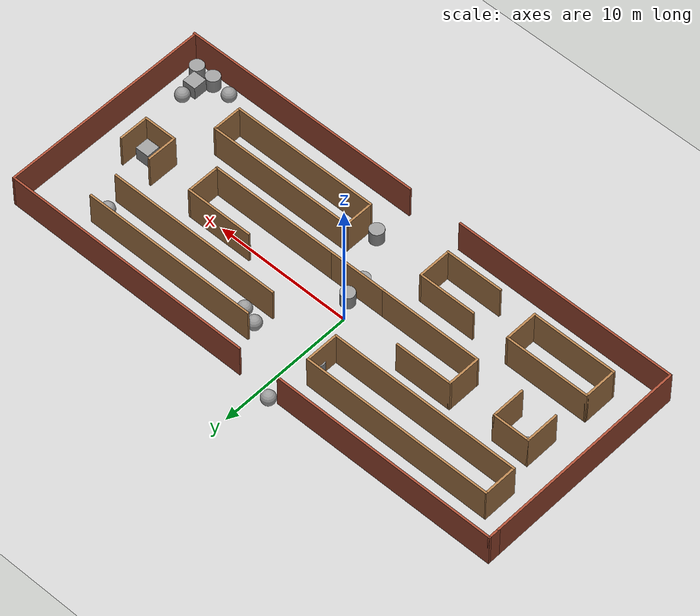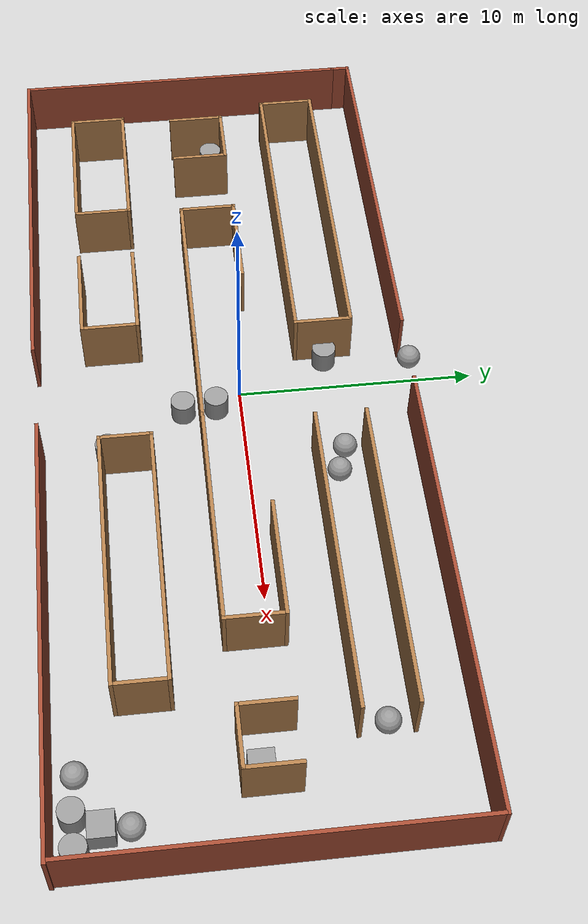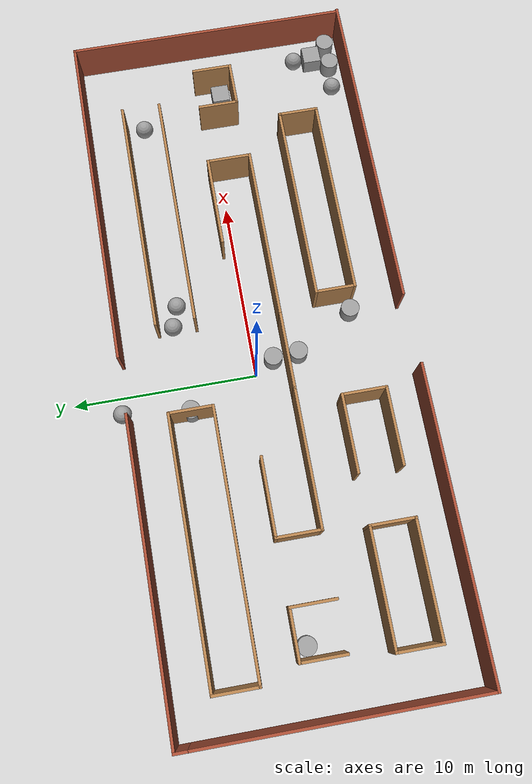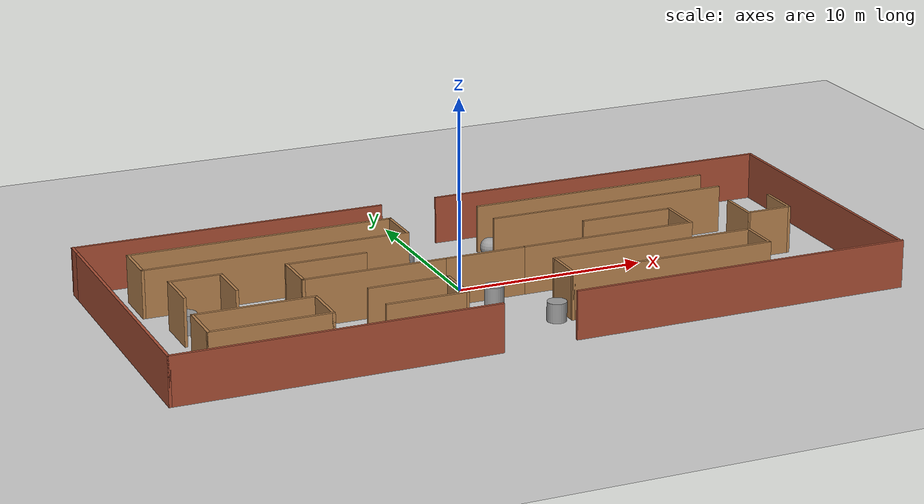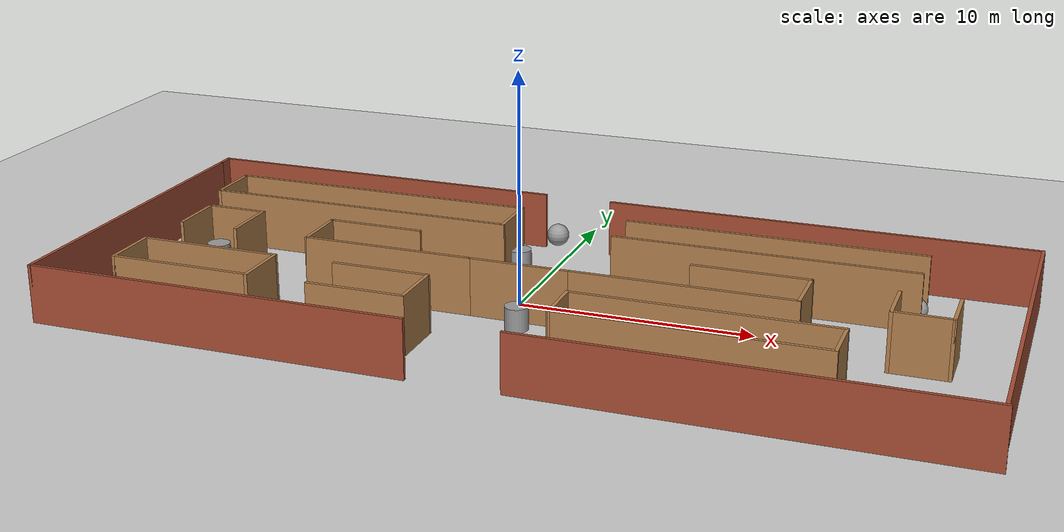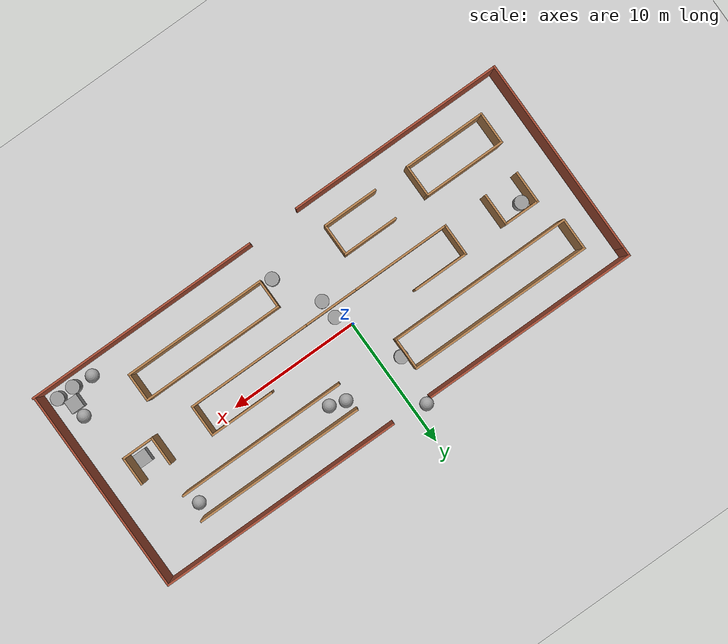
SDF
<sdf version="1.7">
 <world name="default">
  <light name="sun" type="directional">
   <pose>0 0 10 0 -0 0</pose>
   <diffuse>0.8 0.8 0.8 1</diffuse>
   <specular>0.2 0.2 0.2 1</specular>
   <attenuation>
    <range>1000</range>
    <constant>0.9</constant>
    <linear>0.01</linear>
    <quadratic>0.001</quadratic>
   </attenuation>
   <direction>-0.5 0.1 -0.9</direction>
   <spot><inner_angle>0</inner_angle><outer_angle>0</outer_angle><falloff>0</falloff></spot>
  </light>
  <model name="ground_plane">
   <static>1</static>
   <link name="link">
    <collision name="collision">
     <geometry><plane><normal>0 0 1</normal><size>100 100</size></plane></geometry>
     <surface>
      <contact><collide_bitmask>65535</collide_bitmask></contact>
      <friction><ode><mu>100</mu><mu2>50</mu2></ode></friction>
     </surface>
    </collision>
    <visual name="visual">
     <cast_shadows>0</cast_shadows>
     <geometry><plane><normal>0 0 1</normal><size>100 100</size></plane></geometry>
     <material>
      <script><uri>file://media/materials/scripts/gazebo.material</uri><name>Gazebo/Grey</name></script>
     </material>
    </visual>
   </link>
  </model>
  <gravity>0 0 -9.8</gravity>
  <magnetic_field>6e-06 2.3e-05 -4.2e-05</magnetic_field>
  <atmosphere type="adiabatic"/>
  <physics type="ode">
   <max_step_size>0.001</max_step_size>
   <real_time_factor>1</real_time_factor>
   <real_time_update_rate>1000</real_time_update_rate>
  </physics>
  <scene><ambient>0.4 0.4 0.4 1</ambient><background>0.7 0.7 0.7 1</background><shadows>1</shadows></scene>
  <spherical_coordinates>
   <surface_model>EARTH_WGS84</surface_model>
   <latitude_deg>0</latitude_deg>
   <longitude_deg>0</longitude_deg>
   <elevation>0</elevation>
   <heading_deg>0</heading_deg>
  </spherical_coordinates>
  <model name="my_world_2">
   <pose>1.30794 -0.7323 0 0 -0 0</pose>
   <link name="Wall_10">
    <collision name="Wall_10_Collision">
     <geometry><box><size>16.5 0.15 2.5</size></box></geometry>
     <pose>0 0 1.25 0 -0 0</pose>
    </collision>
    <visual name="Wall_10_Visual">
     <pose>0 0 1.25 0 -0 0</pose>
     <geometry><box><size>16.5 0.15 2.5</size></box></geometry>
     <material>
      <script><uri>file://media/materials/scripts/gazebo.material</uri><name>Gazebo/Bricks</name></script>
      <ambient>1 1 1 1</ambient>
     </material>
     <meta><layer>0</layer></meta>
    </visual>
    <pose>-10.9155 7.8 0 0 -0 0</pose>
   </link>
   <link name="Wall_12">
    <collision name="Wall_12_Collision">
     <geometry><box><size>18.75 0.15 2.5</size></box></geometry>
     <pose>0 0 1.25 0 -0 0</pose>
    </collision>
    <visual name="Wall_12_Visual">
     <pose>0 0 1.25 0 -0 0</pose>
     <geometry><box><size>18.75 0.15 2.5</size></box></geometry>
     <material>
      <script><uri>file://media/materials/scripts/gazebo.material</uri><name>Gazebo/Bricks</name></script>
      <ambient>1 1 1 1</ambient>
     </material>
     <meta><layer>0</layer></meta>
    </visual>
    <pose>9.70952 7.8 0 0 -0 3.14159</pose>
   </link>
   <link name="Wall_14">
    <collision name="Wall_14_Collision">
     <geometry><box><size>14 0.15 2.5</size></box></geometry>
     <pose>0 0 1.25 0 -0 0</pose>
    </collision>
    <visual name="Wall_14_Visual">
     <pose>0 0 1.25 0 -0 0</pose>
     <geometry><box><size>14 0.15 2.5</size></box></geometry>
     <material>
      <script><uri>file://media/materials/scripts/gazebo.material</uri><name>Gazebo/Wood</name></script>
      <ambient>1 1 1 1</ambient>
     </material>
     <meta><layer>0</layer></meta>
    </visual>
    <pose>-9.97885 5.65428 0 0 -0 0</pose>
   </link>
   <link name="Wall_15">
    <collision name="Wall_15_Collision">
     <geometry><box><size>2.5 0.15 2.5</size></box></geometry>
     <pose>0 0 1.25 0 -0 0</pose>
    </collision>
    <visual name="Wall_15_Visual">
     <pose>0 0 1.25 0 -0 0</pose>
     <geometry><box><size>2.5 0.15 2.5</size></box></geometry>
     <material>
      <script><uri>file://media/materials/scripts/gazebo.material</uri><name>Gazebo/Wood</name></script>
      <ambient>1 1 1 1</ambient>
     </material>
     <meta><layer>0</layer></meta>
    </visual>
    <pose>-3.05385 4.47928 0 0 -0 -1.5708</pose>
   </link>
   <link name="Wall_16">
    <collision name="Wall_16_Collision">
     <geometry><box><size>14 0.15 2.5</size></box></geometry>
     <pose>0 0 1.25 0 -0 0</pose>
    </collision>
    <visual name="Wall_16_Visual">
     <pose>0 0 1.25 0 -0 0</pose>
     <geometry><box><size>14 0.15 2.5</size></box></geometry>
     <material>
      <script><uri>file://media/materials/scripts/gazebo.material</uri><name>Gazebo/Wood</name></script>
      <ambient>1 1 1 1</ambient>
     </material>
     <meta><layer>0</layer></meta>
    </visual>
    <pose>-9.97885 3.30428 0 0 -0 3.14159</pose>
   </link>
   <link name="Wall_17">
    <collision name="Wall_17_Collision">
     <geometry><box><size>2.5 0.15 2.5</size></box></geometry>
     <pose>0 0 1.25 0 -0 0</pose>
    </collision>
    <visual name="Wall_17_Visual">
     <pose>0 0 1.25 0 -0 0</pose>
     <geometry><box><size>2.5 0.15 2.5</size></box></geometry>
     <material>
      <script><uri>file://media/materials/scripts/gazebo.material</uri><name>Gazebo/Wood</name></script>
      <ambient>1 1 1 1</ambient>
     </material>
     <meta><layer>0</layer></meta>
    </visual>
    <pose>-16.9039 4.47928 0 0 -0 1.5708</pose>
   </link>
   <link name="Wall_23">
    <collision name="Wall_23_Collision">
     <geometry><box><size>2.5 0.15 2.5</size></box></geometry>
     <pose>0 0 1.25 0 -0 0</pose>
    </collision>
    <visual name="Wall_23_Visual">
     <pose>0 0 1.25 0 -0 0</pose>
     <geometry><box><size>2.5 0.15 2.5</size></box></geometry>
     <material>
      <script><uri>file://media/materials/scripts/gazebo.material</uri><name>Gazebo/Wood</name></script>
      <ambient>1 1 1 1</ambient>
     </material>
     <meta><layer>0</layer></meta>
    </visual>
    <pose>-10.2044 0.152559 0 0 -0 1.5708</pose>
   </link>
   <link name="Wall_36">
    <collision name="Wall_36_Collision">
     <geometry><box><size>13 0.15 2.5</size></box></geometry>
     <pose>0 0 1.25 0 -0 0</pose>
    </collision>
    <visual name="Wall_36_Visual">
     <pose>0 0 1.25 0 -0 0</pose>
     <geometry><box><size>13 0.15 2.5</size></box></geometry>
     <material>
      <script><uri>file://media/materials/scripts/gazebo.material</uri><name>Gazebo/Wood</name></script>
      <ambient>1 1 1 1</ambient>
     </material>
     <meta><layer>0</layer></meta>
    </visual>
    <pose>8.27029 3.50776 0 0 -0 0</pose>
   </link>
   <link name="Wall_38">
    <collision name="Wall_38_Collision">
     <geometry><box><size>13 0.15 2.5</size></box></geometry>
     <pose>0 0 1.25 0 -0 0</pose>
    </collision>
    <visual name="Wall_38_Visual">
     <pose>0 0 1.25 0 -0 0</pose>
     <geometry><box><size>13 0.15 2.5</size></box></geometry>
     <material>
      <script><uri>file://media/materials/scripts/gazebo.material</uri><name>Gazebo/Wood</name></script>
      <ambient>1 1 1 1</ambient>
     </material>
     <meta><layer>0</layer></meta>
    </visual>
    <pose>8.27029 5.60776 0 0 -0 3.14159</pose>
   </link>
   <link name="Wall_4">
    <collision name="Wall_4_Collision">
     <geometry><box><size>15 0.15 2.5</size></box></geometry>
     <pose>0 0 1.25 0 -0 0</pose>
    </collision>
    <visual name="Wall_4_Visual">
     <pose>0 0 1.25 0 -0 0</pose>
     <geometry><box><size>15 0.15 2.5</size></box></geometry>
     <material>
      <script><uri>file://media/materials/scripts/gazebo.material</uri><name>Gazebo/Bricks</name></script>
      <ambient>1 1 1 1</ambient>
     </material>
     <meta><layer>0</layer></meta>
    </visual>
    <pose>-19.0905 -0.375 0 0 -0 -1.5708</pose>
   </link>
   <link name="Wall_41">
    <collision name="Wall_41_Collision">
     <geometry><box><size>2.5 0.15 2.5</size></box></geometry>
     <pose>0 0 1.25 0 -0 0</pose>
    </collision>
    <visual name="Wall_41_Visual">
     <pose>0 0 1.25 0 -0 0</pose>
     <geometry><box><size>2.5 0.15 2.5</size></box></geometry>
     <material>
      <script><uri>file://media/materials/scripts/gazebo.material</uri><name>Gazebo/Wood</name></script>
      <ambient>1 1 1 1</ambient>
     </material>
     <meta><layer>0</layer></meta>
    </visual>
    <pose>10.7188 0.152559 0 0 -0 1.5708</pose>
   </link>
   <link name="Wall_43">
    <collision name="Wall_43_Collision">
     <geometry><box><size>7.5 0.15 2.5</size></box></geometry>
     <pose>0 0 1.25 0 -0 0</pose>
    </collision>
    <visual name="Wall_43_Visual">
     <pose>0 0 1.25 0 -0 0</pose>
     <geometry><box><size>7.5 0.15 2.5</size></box></geometry>
     <material>
      <script><uri>file://media/materials/scripts/gazebo.material</uri><name>Gazebo/Wood</name></script>
      <ambient>1 1 1 1</ambient>
     </material>
     <meta><layer>0</layer></meta>
    </visual>
    <pose>-6.52941 -1.02244 0 0 -0 0</pose>
   </link>
   <link name="Wall_45">
    <collision name="Wall_45_Collision">
     <geometry><box><size>9.5 0.15 2.5</size></box></geometry>
     <pose>0 0 1.25 0 -0 0</pose>
    </collision>
    <visual name="Wall_45_Visual">
     <pose>0 0 1.25 0 -0 0</pose>
     <geometry><box><size>9.5 0.15 2.5</size></box></geometry>
     <material>
      <script><uri>file://media/materials/scripts/gazebo.material</uri><name>Gazebo/Wood</name></script>
      <ambient>1 1 1 1</ambient>
     </material>
     <meta><layer>0</layer></meta>
    </visual>
    <pose>6.04381 -1.02244 0 0 -0 3.14159</pose>
   </link>
   <link name="Wall_48">
    <collision name="Wall_48_Collision">
     <geometry><box><size>6.25 0.15 2.5</size></box></geometry>
     <pose>0 0 1.25 0 -0 0</pose>
    </collision>
    <visual name="Wall_48_Visual">
     <pose>0 0 1.25 0 -0 0</pose>
     <geometry><box><size>6.25 0.15 2.5</size></box></geometry>
     <material>
      <script><uri>file://media/materials/scripts/gazebo.material</uri><name>Gazebo/Wood</name></script>
      <ambient>1 1 1 1</ambient>
     </material>
     <meta><layer>0</layer></meta>
    </visual>
    <pose>-13.4817 -5.73874 0 0 -0 0</pose>
   </link>
   <link name="Wall_49">
    <collision name="Wall_49_Collision">
     <geometry><box><size>2.5 0.15 2.5</size></box></geometry>
     <pose>0 0 1.25 0 -0 0</pose>
    </collision>
    <visual name="Wall_49_Visual">
     <pose>0 0 1.25 0 -0 0</pose>
     <geometry><box><size>2.5 0.15 2.5</size></box></geometry>
     <material>
      <script><uri>file://media/materials/scripts/gazebo.material</uri><name>Gazebo/Wood</name></script>
      <ambient>1 1 1 1</ambient>
     </material>
     <meta><layer>0</layer></meta>
    </visual>
    <pose>-10.4317 -4.56374 0 0 -0 1.5708</pose>
   </link>
   <link name="Wall_50">
    <collision name="Wall_50_Collision">
     <geometry><box><size>6.25 0.15 2.5</size></box></geometry>
     <pose>0 0 1.25 0 -0 0</pose>
    </collision>
    <visual name="Wall_50_Visual">
     <pose>0 0 1.25 0 -0 0</pose>
     <geometry><box><size>6.25 0.15 2.5</size></box></geometry>
     <material>
      <script><uri>file://media/materials/scripts/gazebo.material</uri><name>Gazebo/Wood</name></script>
      <ambient>1 1 1 1</ambient>
     </material>
     <meta><layer>0</layer></meta>
    </visual>
    <pose>-13.4817 -3.38874 0 0 -0 3.14159</pose>
   </link>
   <link name="Wall_52">
    <collision name="Wall_52_Collision">
     <geometry><box><size>2.5 0.15 2.5</size></box></geometry>
     <pose>0 0 1.25 0 -0 0</pose>
    </collision>
    <visual name="Wall_52_Visual">
     <pose>0 0 1.25 0 -0 0</pose>
     <geometry><box><size>2.5 0.15 2.5</size></box></geometry>
     <material>
      <script><uri>file://media/materials/scripts/gazebo.material</uri><name>Gazebo/Wood</name></script>
      <ambient>1 1 1 1</ambient>
     </material>
     <meta><layer>0</layer></meta>
    </visual>
    <pose>-16.5317 -4.56374 0 0 -0 1.5708</pose>
   </link>
   <link name="Wall_54">
    <collision name="Wall_54_Collision">
     <geometry><box><size>2.25 0.15 2.5</size></box></geometry>
     <pose>0 0 1.25 0 -0 0</pose>
    </collision>
    <visual name="Wall_54_Visual">
     <pose>0 0 1.25 0 -0 0</pose>
     <geometry><box><size>2.25 0.15 2.5</size></box></geometry>
     <material>
      <script><uri>file://media/materials/scripts/gazebo.material</uri><name>Gazebo/Wood</name></script>
      <ambient>1 1 1 1</ambient>
     </material>
     <meta><layer>0</layer></meta>
    </visual>
    <pose>2.12443 -4.18874 0 0 -0 -1.5708</pose>
   </link>
   <link name="Wall_55">
    <collision name="Wall_55_Collision">
     <geometry><box><size>10.9484 0.15 2.5</size></box></geometry>
     <pose>0 0 1.25 0 -0 0</pose>
    </collision>
    <visual name="Wall_55_Visual">
     <pose>0 0 1.25 0 -0 0</pose>
     <geometry><box><size>10.9484 0.15 2.5</size></box></geometry>
     <material>
      <script><uri>file://media/materials/scripts/gazebo.material</uri><name>Gazebo/Wood</name></script>
      <ambient>1 1 1 1</ambient>
     </material>
     <meta><layer>0</layer></meta>
    </visual>
    <pose>7.52362 -5.23874 0 0 -0 0</pose>
   </link>
   <link name="Wall_58">
    <collision name="Wall_58_Collision">
     <geometry><box><size>2.25 0.15 2.5</size></box></geometry>
     <pose>0 0 1.25 0 -0 0</pose>
    </collision>
    <visual name="Wall_58_Visual">
     <pose>0 0 1.25 0 -0 0</pose>
     <geometry><box><size>2.25 0.15 2.5</size></box></geometry>
     <material>
      <script><uri>file://media/materials/scripts/gazebo.material</uri><name>Gazebo/Wood</name></script>
      <ambient>1 1 1 1</ambient>
     </material>
     <meta><layer>0</layer></meta>
    </visual>
    <pose>12.9228 -4.18874 0 0 -0 1.5708</pose>
   </link>
   <link name="Wall_59">
    <collision name="Wall_59_Collision">
     <geometry><box><size>10.9484 0.15 2.5</size></box></geometry>
     <pose>0 0 1.25 0 -0 0</pose>
    </collision>
    <visual name="Wall_59_Visual">
     <pose>0 0 1.25 0 -0 0</pose>
     <geometry><box><size>10.9484 0.15 2.5</size></box></geometry>
     <material>
      <script><uri>file://media/materials/scripts/gazebo.material</uri><name>Gazebo/Wood</name></script>
      <ambient>1 1 1 1</ambient>
     </material>
     <meta><layer>0</layer></meta>
    </visual>
    <pose>7.52362 -3.13874 0 0 -0 3.14159</pose>
   </link>
   <link name="Wall_6">
    <collision name="Wall_6_Collision">
     <geometry><box><size>15.5 0.15 2.5</size></box></geometry>
     <pose>0 0 1.25 0 -0 0</pose>
    </collision>
    <visual name="Wall_6_Visual">
     <pose>0 0 1.25 0 -0 0</pose>
     <geometry><box><size>15.5 0.15 2.5</size></box></geometry>
     <material>
      <script><uri>file://media/materials/scripts/gazebo.material</uri><name>Gazebo/Bricks</name></script>
      <ambient>1 1 1 1</ambient>
     </material>
     <meta><layer>0</layer></meta>
    </visual>
    <pose>19.0095 0.125 0 0 -0 1.5708</pose>
   </link>
   <link name="Wall_62">
    <collision name="Wall_62_Collision">
     <geometry><box><size>4.25 0.15 2.5</size></box></geometry>
     <pose>0 0 1.25 0 -0 0</pose>
    </collision>
    <visual name="Wall_62_Visual">
     <pose>0 0 1.25 0 -0 0</pose>
     <geometry><box><size>4.25 0.15 2.5</size></box></geometry>
     <material>
      <script><uri>file://media/materials/scripts/gazebo.material</uri><name>Gazebo/Wood</name></script>
      <ambient>1 1 1 1</ambient>
     </material>
     <meta><layer>0</layer></meta>
    </visual>
    <pose>-5.68864 -5.72136 0 0 -0 0</pose>
   </link>
   <link name="Wall_63">
    <collision name="Wall_63_Collision">
     <geometry><box><size>2.5 0.15 2.5</size></box></geometry>
     <pose>0 0 1.25 0 -0 0</pose>
    </collision>
    <visual name="Wall_63_Visual">
     <pose>0 0 1.25 0 -0 0</pose>
     <geometry><box><size>2.5 0.15 2.5</size></box></geometry>
     <material>
      <script><uri>file://media/materials/scripts/gazebo.material</uri><name>Gazebo/Wood</name></script>
      <ambient>1 1 1 1</ambient>
     </material>
     <meta><layer>0</layer></meta>
    </visual>
    <pose>-3.63864 -4.54636 0 0 -0 1.5708</pose>
   </link>
   <link name="Wall_64">
    <collision name="Wall_64_Collision">
     <geometry><box><size>4.25 0.15 2.5</size></box></geometry>
     <pose>0 0 1.25 0 -0 0</pose>
    </collision>
    <visual name="Wall_64_Visual">
     <pose>0 0 1.25 0 -0 0</pose>
     <geometry><box><size>4.25 0.15 2.5</size></box></geometry>
     <material>
      <script><uri>file://media/materials/scripts/gazebo.material</uri><name>Gazebo/Wood</name></script>
      <ambient>1 1 1 1</ambient>
     </material>
     <meta><layer>0</layer></meta>
    </visual>
    <pose>-5.68864 -3.37136 0 0 -0 3.14159</pose>
   </link>
   <link name="Wall_66">
    <collision name="Wall_66_Collision">
     <geometry><box><size>16.5 0.15 2.5</size></box></geometry>
     <pose>0 0 1.25 0 -0 0</pose>
    </collision>
    <visual name="Wall_66_Visual">
     <pose>0 0 1.25 0 -0 0</pose>
     <geometry><box><size>16.5 0.15 2.5</size></box></geometry>
     <material>
      <script><uri>file://media/materials/scripts/gazebo.material</uri><name>Gazebo/Bricks</name></script>
      <ambient>1 1 1 1</ambient>
     </material>
     <meta><layer>0</layer></meta>
    </visual>
    <pose>-10.9155 -7.8 0 0 -0 0</pose>
   </link>
   <link name="Wall_68">
    <collision name="Wall_68_Collision">
     <geometry><box><size>18 0.15 2.5</size></box></geometry>
     <pose>0 0 1.25 0 -0 0</pose>
    </collision>
    <visual name="Wall_68_Visual">
     <pose>0 0 1.25 0 -0 0</pose>
     <geometry><box><size>18 0.15 2.5</size></box></geometry>
     <material>
      <script><uri>file://media/materials/scripts/gazebo.material</uri><name>Gazebo/Bricks</name></script>
      <ambient>1 1 1 1</ambient>
     </material>
     <meta><layer>0</layer></meta>
    </visual>
    <pose>10.1655 -7.69808 0 0 -0 0</pose>
   </link>
   <link name="Wall_70">
    <collision name="Wall_70_Collision">
     <geometry><box><size>2.25 0.15 2.5</size></box></geometry>
     <pose>0 0 1.25 0 -0 0</pose>
    </collision>
    <visual name="Wall_70_Visual">
     <pose>0 0 1.25 0 -0 0</pose>
     <geometry><box><size>2.25 0.15 2.5</size></box></geometry>
     <material>
      <script><uri>file://media/materials/scripts/gazebo.material</uri><name>Gazebo/Wood</name></script>
      <ambient>1 1 1 1</ambient>
     </material>
     <meta><layer>0</layer></meta>
    </visual>
    <pose>14.1593 0.174007 0 0 -0 -1.5708</pose>
   </link>
   <link name="Wall_71">
    <collision name="Wall_71_Collision">
     <geometry><box><size>2.5 0.15 2.5</size></box></geometry>
     <pose>0 0 1.25 0 -0 0</pose>
    </collision>
    <visual name="Wall_71_Visual">
     <pose>0 0 1.25 0 -0 0</pose>
     <geometry><box><size>2.5 0.15 2.5</size></box></geometry>
     <material>
      <script><uri>file://media/materials/scripts/gazebo.material</uri><name>Gazebo/Wood</name></script>
      <ambient>1 1 1 1</ambient>
     </material>
     <meta><layer>0</layer></meta>
    </visual>
    <pose>15.3343 -0.875993 0 0 -0 0</pose>
   </link>
   <link name="Wall_72">
    <collision name="Wall_72_Collision">
     <geometry><box><size>2.25 0.15 2.5</size></box></geometry>
     <pose>0 0 1.25 0 -0 0</pose>
    </collision>
    <visual name="Wall_72_Visual">
     <pose>0 0 1.25 0 -0 0</pose>
     <geometry><box><size>2.25 0.15 2.5</size></box></geometry>
     <material>
      <script><uri>file://media/materials/scripts/gazebo.material</uri><name>Gazebo/Wood</name></script>
      <ambient>1 1 1 1</ambient>
     </material>
     <meta><layer>0</layer></meta>
    </visual>
    <pose>16.5093 0.174007 0 0 -0 1.5708</pose>
   </link>
   <link name="Wall_74">
    <collision name="Wall_74_Collision">
     <geometry><box><size>2.5 0.15 2.5</size></box></geometry>
     <pose>0 0 1.25 0 -0 0</pose>
    </collision>
    <visual name="Wall_74_Visual">
     <pose>0 0 1.25 0 -0 0</pose>
     <geometry><box><size>2.5 0.15 2.5</size></box></geometry>
     <material>
      <script><uri>file://media/materials/scripts/gazebo.material</uri><name>Gazebo/Wood</name></script>
      <ambient>1 1 1 1</ambient>
     </material>
     <meta><layer>0</layer></meta>
    </visual>
    <pose>-16.1823 0.093039 0 0 -0 1.5708</pose>
   </link>
   <link name="Wall_75">
    <collision name="Wall_75_Collision">
     <geometry><box><size>2.75 0.15 2.5</size></box></geometry>
     <pose>0 0 1.25 0 -0 0</pose>
    </collision>
    <visual name="Wall_75_Visual">
     <pose>0 0 1.25 0 -0 0</pose>
     <geometry><box><size>2.75 0.15 2.5</size></box></geometry>
     <material>
      <script><uri>file://media/materials/scripts/gazebo.material</uri><name>Gazebo/Wood</name></script>
      <ambient>1 1 1 1</ambient>
     </material>
     <meta><layer>0</layer></meta>
    </visual>
    <pose>-14.8823 1.26804 0 0 -0 0</pose>
   </link>
   <link name="Wall_76">
    <collision name="Wall_76_Collision">
     <geometry><box><size>2.5 0.15 2.5</size></box></geometry>
     <pose>0 0 1.25 0 -0 0</pose>
    </collision>
    <visual name="Wall_76_Visual">
     <pose>0 0 1.25 0 -0 0</pose>
     <geometry><box><size>2.5 0.15 2.5</size></box></geometry>
     <material>
      <script><uri>file://media/materials/scripts/gazebo.material</uri><name>Gazebo/Wood</name></script>
      <ambient>1 1 1 1</ambient>
     </material>
     <meta><layer>0</layer></meta>
    </visual>
    <pose>-13.5823 0.093039 0 0 -0 -1.5708</pose>
   </link>
   <link name="Wall_78">
    <collision name="Wall_78_Collision">
     <geometry><box><size>4.37322 0.15 2.5</size></box></geometry>
     <pose>0 0 1.25 0 -0 0</pose>
    </collision>
    <visual name="Wall_78_Visual">
     <pose>0 0 1.25 0 -0 0</pose>
     <geometry><box><size>4.37322 0.15 2.5</size></box></geometry>
     <material>
      <script><uri>file://media/materials/scripts/gazebo.material</uri><name>Gazebo/Wood</name></script>
      <ambient>1 1 1 1</ambient>
     </material>
     <meta><layer>0</layer></meta>
    </visual>
    <pose>-0.742797 -1.02244 0 0 -0 0</pose>
   </link>
   <link name="Wall_8">
    <collision name="Wall_8_Collision">
     <geometry><box><size>0.9 0.15 2.5</size></box></geometry>
     <pose>0 0 1.25 0 -0 0</pose>
    </collision>
    <visual name="Wall_8_Visual">
     <pose>0 0 1.25 0 -0 0</pose>
     <geometry><box><size>0.9 0.15 2.5</size></box></geometry>
     <material>
      <script><uri>file://media/materials/scripts/gazebo.material</uri><name>Gazebo/Bricks</name></script>
      <ambient>1 1 1 1</ambient>
     </material>
     <meta><layer>0</layer></meta>
    </visual>
    <pose>-19.0905 7.425 0 0 -0 -1.5708</pose>
   </link>
   <link name="Wall_80">
    <collision name="Wall_80_Collision">
     <geometry><box><size>4.25 0.15 2.5</size></box></geometry>
     <pose>0 0 1.25 0 -0 0</pose>
    </collision>
    <visual name="Wall_80_Visual">
     <pose>0 0 1.25 0 -0 0</pose>
     <geometry><box><size>4.25 0.15 2.5</size></box></geometry>
     <material>
      <script><uri>file://media/materials/scripts/gazebo.material</uri><name>Gazebo/Wood</name></script>
      <ambient>1 1 1 1</ambient>
     </material>
     <meta><layer>0</layer></meta>
    </visual>
    <pose>-8.15441 1.32756 0 0 -0 0</pose>
   </link>
   <link name="Wall_82">
    <collision name="Wall_82_Collision">
     <geometry><box><size>5 0.15 2.5</size></box></geometry>
     <pose>0 0 1.25 0 -0 0</pose>
    </collision>
    <visual name="Wall_82_Visual">
     <pose>0 0 1.25 0 -0 0</pose>
     <geometry><box><size>5 0.15 2.5</size></box></geometry>
     <material>
      <script><uri>file://media/materials/scripts/gazebo.material</uri><name>Gazebo/Wood</name></script>
      <ambient>1 1 1 1</ambient>
     </material>
     <meta><layer>0</layer></meta>
    </visual>
    <pose>8.29381 1.32756 0 0 -0 3.14159</pose>
   </link>
   <static>1</static>
  </model>
  <model name="unit_cylinder">
   <pose>-1.41804 3.78322 0.499996 -4e-06 3e-06 0</pose>
   <link name="link">
    <inertial>
     <mass>1</mass>
     <inertia><ixx>0.145833</ixx><ixy>0</ixy><ixz>0</ixz><iyy>0.145833</iyy><iyz>0</iyz><izz>0.125</izz></inertia>
    </inertial>
    <collision name="collision">
     <geometry><cylinder><radius>0.5</radius><length>1</length></cylinder></geometry>
    </collision>
    <visual name="visual">
     <geometry><cylinder><radius>0.5</radius><length>1</length></cylinder></geometry>
     <material>
      <script><name>Gazebo/Grey</name><uri>file://media/materials/scripts/gazebo.material</uri></script>
     </material>
    </visual>
   </link>
  </model>
  <model name="unit_cylinder_0">
   <pose>0.80258 -2.47325 0.499994 3e-06 -3e-06 0</pose>
   <link name="link">
    <inertial>
     <mass>1</mass>
     <inertia><ixx>0.145833</ixx><ixy>0</ixy><ixz>0</ixz><iyy>0.145833</iyy><iyz>0</iyz><izz>0.125</izz></inertia>
    </inertial>
    <collision name="collision">
     <geometry><cylinder><radius>0.5</radius><length>1</length></cylinder></geometry>
    </collision>
    <visual name="visual">
     <geometry><cylinder><radius>0.5</radius><length>1</length></cylinder></geometry>
     <material>
      <script><name>Gazebo/Grey</name><uri>file://media/materials/scripts/gazebo.material</uri></script>
     </material>
    </visual>
   </link>
  </model>
  <model name="unit_cylinder_1">
   <pose>0.713427 -1.0646 0.499996 -4e-06 3e-06 0</pose>
   <link name="link">
    <inertial>
     <mass>1</mass>
     <inertia><ixx>0.145833</ixx><ixy>0</ixy><ixz>0</ixz><iyy>0.145833</iyy><iyz>0</iyz><izz>0.125</izz></inertia>
    </inertial>
    <collision name="collision">
     <geometry><cylinder><radius>0.5</radius><length>1</length></cylinder></geometry>
    </collision>
    <visual name="visual">
     <geometry><cylinder><radius>0.5</radius><length>1</length></cylinder></geometry>
     <material>
      <script><name>Gazebo/Grey</name><uri>file://media/materials/scripts/gazebo.material</uri></script>
     </material>
    </visual>
   </link>
  </model>
  <model name="unit_cylinder_2">
   <pose>-14.2445 -0.039266 0.499994 -3e-06 -1e-06 -0</pose>
   <link name="link">
    <inertial>
     <mass>1</mass>
     <inertia><ixx>0.145833</ixx><ixy>0</ixy><ixz>0</ixz><iyy>0.145833</iyy><iyz>0</iyz><izz>0.125</izz></inertia>
    </inertial>
    <collision name="collision">
     <geometry><cylinder><radius>0.5</radius><length>1</length></cylinder></geometry>
    </collision>
    <visual name="visual">
     <geometry><cylinder><radius>0.5</radius><length>1</length></cylinder></geometry>
     <material>
      <script><name>Gazebo/Grey</name><uri>file://media/materials/scripts/gazebo.material</uri></script>
     </material>
    </visual>
   </link>
  </model>
  <model name="unit_box_0">
   <pose>17.0415 -0.8783 0.499995 0 1e-05 0</pose>
   <link name="link">
    <inertial>
     <mass>1</mass>
     <inertia>
      <ixx>0.166667</ixx>
      <ixy>0</ixy>
      <ixz>0</ixz>
      <iyy>0.166667</iyy>
      <iyz>0</iyz>
      <izz>0.166667</izz>
     </inertia>
    </inertial>
    <collision name="collision"><geometry><box><size>1 1 1</size></box></geometry></collision>
    <visual name="visual">
     <geometry><box><size>1 1 1</size></box></geometry>
     <material>
      <script><name>Gazebo/Grey</name><uri>file://media/materials/scripts/gazebo.material</uri></script>
     </material>
    </visual>
   </link>
  </model>
  <model name="unit_sphere">
   <pose>3.43123 4.04157 0.5 0 -0 0</pose>
   <link name="link">
    <inertial>
     <mass>1</mass>
     <inertia><ixx>0.1</ixx><ixy>0</ixy><ixz>0</ixz><iyy>0.1</iyy><iyz>0</iyz><izz>0.1</izz></inertia>
    </inertial>
    <collision name="collision"><geometry><sphere><radius>0.5</radius></sphere></geometry></collision>
    <visual name="visual">
     <geometry><sphere><radius>0.5</radius></sphere></geometry>
     <material>
      <script><name>Gazebo/Grey</name><uri>file://media/materials/scripts/gazebo.material</uri></script>
     </material>
    </visual>
   </link>
  </model>
  <model name="unit_sphere_0">
   <pose>4.58901 3.66518 0.5 0 -0 0</pose>
   <link name="link">
    <inertial>
     <mass>1</mass>
     <inertia><ixx>0.1</ixx><ixy>0</ixy><ixz>0</ixz><iyy>0.1</iyy><iyz>0</iyz><izz>0.1</izz></inertia>
    </inertial>
    <collision name="collision"><geometry><sphere><radius>0.5</radius></sphere></geometry></collision>
    <visual name="visual">
     <geometry><sphere><radius>0.5</radius></sphere></geometry>
     <material>
      <script><name>Gazebo/Grey</name><uri>file://media/materials/scripts/gazebo.material</uri></script>
     </material>
    </visual>
   </link>
  </model>
  <model name="unit_sphere_1">
   <pose>15.7309 3.8719 0.5 0 -0 0</pose>
   <link name="link">
    <inertial>
     <mass>1</mass>
     <inertia><ixx>0.1</ixx><ixy>0</ixy><ixz>0</ixz><iyy>0.1</iyy><iyz>0</iyz><izz>0.1</izz></inertia>
    </inertial>
    <collision name="collision"><geometry><sphere><radius>0.5</radius></sphere></geometry></collision>
    <visual name="visual">
     <geometry><sphere><radius>0.5</radius></sphere></geometry>
     <material>
      <script><name>Gazebo/Grey</name><uri>file://media/materials/scripts/gazebo.material</uri></script>
     </material>
    </visual>
   </link>
  </model>
  <model name="unit_sphere_2">
   <pose>-0.951758 7.44501 0.5 -0.009821 0.009626 -0.000558</pose>
   <link name="link">
    <inertial>
     <mass>1</mass>
     <inertia><ixx>0.1</ixx><ixy>0</ixy><ixz>0</ixz><iyy>0.1</iyy><iyz>0</iyz><izz>0.1</izz></inertia>
    </inertial>
    <collision name="collision"><geometry><sphere><radius>0.5</radius></sphere></geometry></collision>
    <visual name="visual">
     <geometry><sphere><radius>0.5</radius></sphere></geometry>
     <material>
      <script><name>Gazebo/Grey</name><uri>file://media/materials/scripts/gazebo.material</uri></script>
     </material>
    </visual>
   </link>
  </model>
  <model name="unit_cylinder_3">
   <pose>2.69814 -5.7196 0.499992 -3e-06 2e-06 0</pose>
   <link name="link">
    <inertial>
     <mass>1</mass>
     <inertia><ixx>0.145833</ixx><ixy>0</ixy><ixz>0</ixz><iyy>0.145833</iyy><iyz>0</iyz><izz>0.125</izz></inertia>
    </inertial>
    <collision name="collision">
     <geometry><cylinder><radius>0.5</radius><length>1</length></cylinder></geometry>
    </collision>
    <visual name="visual">
     <geometry><cylinder><radius>0.5</radius><length>1</length></cylinder></geometry>
     <material>
      <script><name>Gazebo/Grey</name><uri>file://media/materials/scripts/gazebo.material</uri></script>
     </material>
    </visual>
   </link>
  </model>
  <model name="unit_cylinder_4">
   <pose>19.4173 -7.5915 0.499998 3e-06 -2e-06 0</pose>
   <link name="link">
    <inertial>
     <mass>1</mass>
     <inertia><ixx>0.145833</ixx><ixy>0</ixy><ixz>0</ixz><iyy>0.145833</iyy><iyz>0</iyz><izz>0.125</izz></inertia>
    </inertial>
    <collision name="collision">
     <geometry><cylinder><radius>0.5</radius><length>1</length></cylinder></geometry>
    </collision>
    <visual name="visual">
     <geometry><cylinder><radius>0.5</radius><length>1</length></cylinder></geometry>
     <material>
      <script><name>Gazebo/Grey</name><uri>file://media/materials/scripts/gazebo.material</uri></script>
     </material>
    </visual>
   </link>
  </model>
  <model name="unit_cylinder_5">
   <pose>18.1056 -7.64056 0.499992 -3e-06 2e-06 0</pose>
   <link name="link">
    <inertial>
     <mass>1</mass>
     <inertia><ixx>0.145833</ixx><ixy>0</ixy><ixz>0</ixz><iyy>0.145833</iyy><iyz>0</iyz><izz>0.125</izz></inertia>
    </inertial>
    <collision name="collision">
     <geometry><cylinder><radius>0.5</radius><length>1</length></cylinder></geometry>
    </collision>
    <visual name="visual">
     <geometry><cylinder><radius>0.5</radius><length>1</length></cylinder></geometry>
     <material>
      <script><name>Gazebo/Grey</name><uri>file://media/materials/scripts/gazebo.material</uri></script>
     </material>
    </visual>
   </link>
  </model>
  <model name="unit_box_1">
   <pose>18.6955 -6.62699 0.499995 0 1e-05 0</pose>
   <link name="link">
    <inertial>
     <mass>1</mass>
     <inertia>
      <ixx>0.166667</ixx>
      <ixy>0</ixy>
      <ixz>0</ixz>
      <iyy>0.166667</iyy>
      <iyz>0</iyz>
      <izz>0.166667</izz>
     </inertia>
    </inertial>
    <collision name="collision"><geometry><box><size>1 1 1</size></box></geometry></collision>
    <visual name="visual">
     <geometry><box><size>1 1 1</size></box></geometry>
     <material>
      <script><name>Gazebo/Grey</name><uri>file://media/materials/scripts/gazebo.material</uri></script>
     </material>
    </visual>
   </link>
  </model>
  <model name="unit_sphere_3">
   <pose>16.6484 -7.51862 0.5 0 -0 0</pose>
   <link name="link">
    <inertial>
     <mass>1</mass>
     <inertia><ixx>0.1</ixx><ixy>0</ixy><ixz>0</ixz><iyy>0.1</iyy><iyz>0</iyz><izz>0.1</izz></inertia>
    </inertial>
    <collision name="collision"><geometry><sphere><radius>0.5</radius></sphere></geometry></collision>
    <visual name="visual">
     <geometry><sphere><radius>0.5</radius></sphere></geometry>
     <material>
      <script><name>Gazebo/Grey</name><uri>file://media/materials/scripts/gazebo.material</uri></script>
     </material>
    </visual>
   </link>
  </model>
  <model name="unit_sphere_4">
   <pose>18.7258 -5.58559 0.5 0 -0 0</pose>
   <link name="link">
    <inertial>
     <mass>1</mass>
     <inertia><ixx>0.1</ixx><ixy>0</ixy><ixz>0</ixz><iyy>0.1</iyy><iyz>0</iyz><izz>0.1</izz></inertia>
    </inertial>
    <collision name="collision"><geometry><sphere><radius>0.5</radius></sphere></geometry></collision>
    <visual name="visual">
     <geometry><sphere><radius>0.5</radius></sphere></geometry>
     <material>
      <script><name>Gazebo/Grey</name><uri>file://media/materials/scripts/gazebo.material</uri></script>
     </material>
    </visual>
   </link>
  </model>
 </world>
</sdf>
